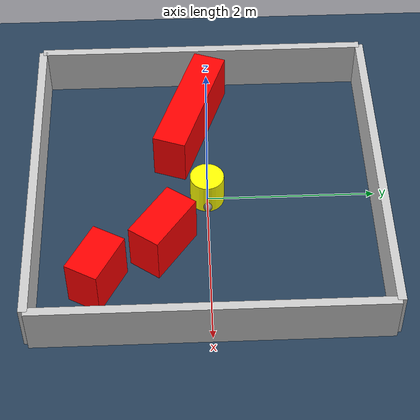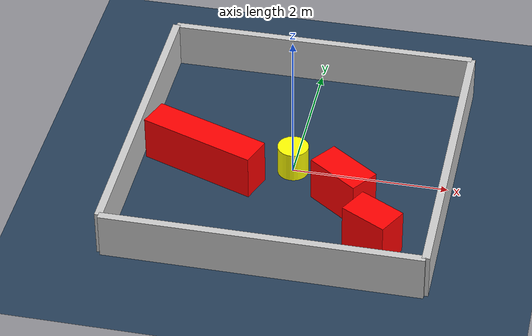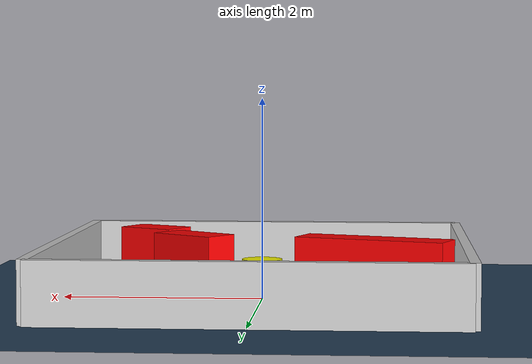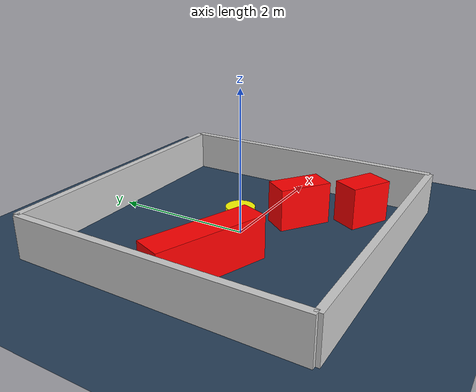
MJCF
<?xml version="1.0" ?>
<mujoco model="generated_environment">
  <option timestep="0.01" integrator="RK4" cone="elliptic"/>
  <default>
    <geom density="1"/>
  </default>
  <asset>
    <texture builtin="gradient" height="3072" rgb1="0.3 0.5 0.7" rgb2="0 0 0" type="skybox" width="512"/>
    <texture builtin="checker" height="300" mark="edge" markrgb="0.8 0.8 0.8" name="groundplane" rgb1="0.2 0.3 0.4" rgb2="0.1 0.2 0.3" type="2d" width="300"/>
    <material name="groundplane" reflectance="0.2" texrepeat="5 5" texture="groundplane" texuniform="true"/>
    <material name="robot" rgba="0.0 1.0 0.0 1"/>
  </asset>
  <worldbody>
    <light dir="0 0 -1" directional="true" pos="0 0 1.5"/>
    <geom condim="4" friction="1.0 0.005 0.001" material="groundplane" name="floor" size="0 0 0.05" type="plane"/>
    <body name="walls">
      <geom name="wall_1" condim="4" pos="-2.0 0.0 0.3" rgba="0.800000011920929 0.800000011920929 0.800000011920929 1.0" size="0.05 2.0 0.3" type="box"/>
      <geom name="wall_2" condim="4" pos="2.0 0.0 0.3" rgba="0.800000011920929 0.800000011920929 0.800000011920929 1.0" size="0.05 2.0 0.3" type="box"/>
      <geom name="wall_3" condim="4" pos="0.0 -2.0 0.3" rgba="0.800000011920929 0.800000011920929 0.800000011920929 1.0" size="2.0 0.05 0.3" type="box"/>
      <geom name="wall_4" condim="4" pos="0.0 2.0 0.3" rgba="0.800000011920929 0.800000011920929 0.800000011920929 1.0" size="2.0 0.05 0.3" type="box"/>
    </body>
    <body name="robot">
      <joint name="joint_x" type="slide" pos="0 0 0" axis="1 0 0"/>
      <joint name="joint_y" type="slide" pos="0 0 0" axis="0 1 0"/>
      <geom name="robot" type="sphere" pos="0.3 0.0 0.2" size="0.05" mass="5." friction="1.0 0.005 0.0001" condim="4" rgba="0.5 0.5 0.5 1.0"/>
      <site name="sensor_ball"/>
    </body>
    <body name="obstacle_movable_1">
      <geom name="obstacle_movable_1" condim="4" pos="0.0 0.0 0.2" euler="0 0 0.0" friction="1.0 0.005 0.001" rgba="1.0 1.0 0.0 1.0" size="0.2 0.2 0.0" type="cylinder" mass="0.1"/>
      <joint type="free"/>
    </body>
    <body name="obstacle_2_static">
      <geom name="obstacle_2_static" condim="4" pos="-1.1137591627736472 -0.17214295474600694 0.3" euler="0 0 339.963644943343" friction="1.0 0.005 0.001" rgba="1 0 0 1" size="0.779086272147776 0.2 0.3" type="box"/>
    </body>
    <body name="obstacle_3_static">
      <geom name="obstacle_3_static" condim="4" pos="0.7425406290045216 -0.522468993201405 0.3" euler="0 0 144.2371172273665" friction="1.0 0.005 0.001" rgba="1 0 0 1" size="0.37779981668250184 0.2 0.3" type="box"/>
    </body>
    <body name="obstacle_4_static">
      <geom name="obstacle_4_static" condim="4" pos="1.237630870359145 -1.2661576878462442 0.3" euler="0 0 151.18349923050832" friction="1.0 0.005 0.001" rgba="1 0 0 1" size="0.3139117956546142 0.2 0.3" type="box"/>
    </body>
  </worldbody>
  <actuator>
    <motor name="actuator_x" joint="joint_x" gear="1" ctrlrange="-1 1"/>
    <motor name="actuator_y" joint="joint_y" gear="1" ctrlrange="-1 1"/>
  </actuator>
</mujoco>
